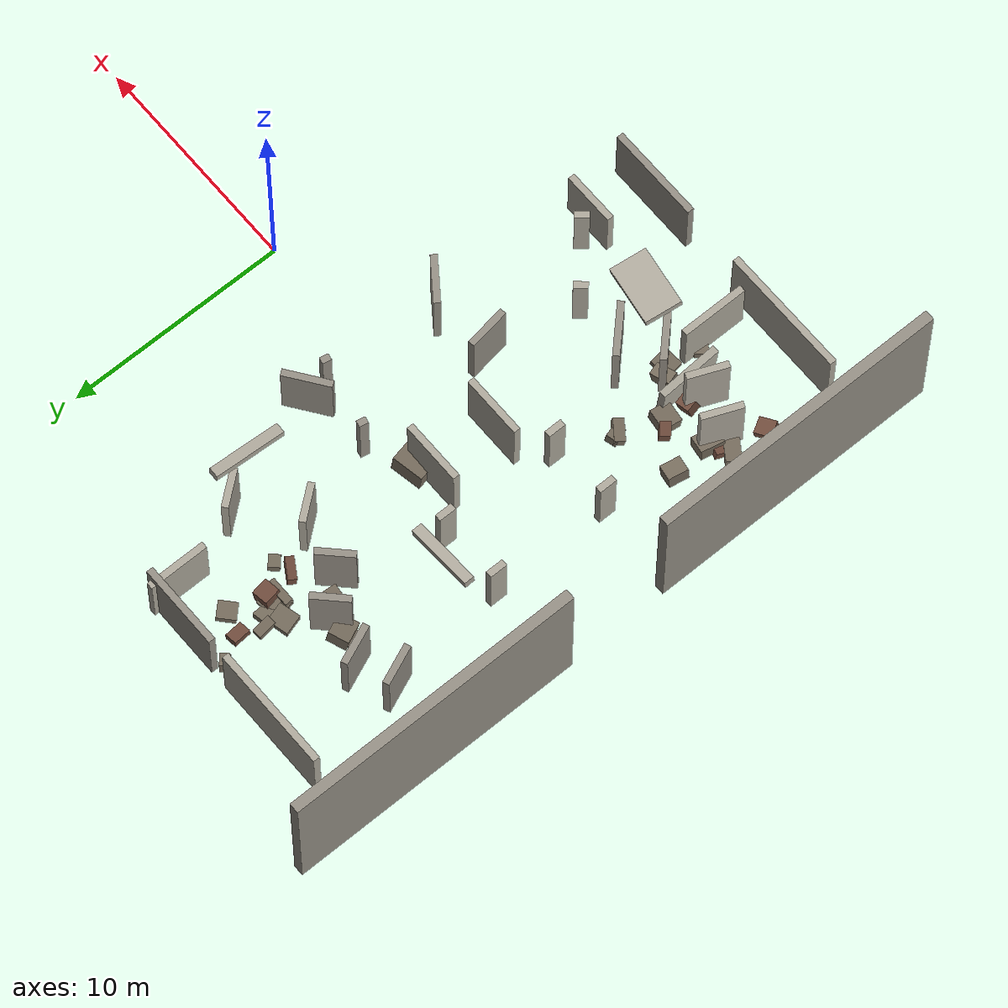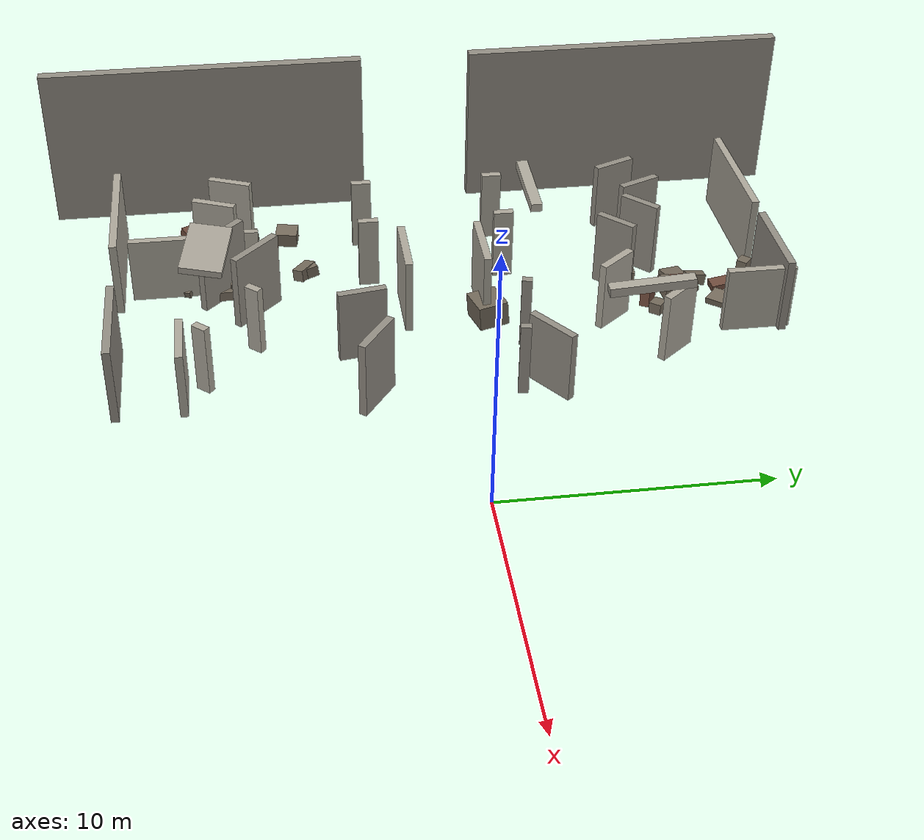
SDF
<sdf version="1.6">
 <model name="ruins_urban_01_challenge">
  <static>true</static>
  <link name="003_main_envelope_west_n">
   <pose>-20.80000 9.00000 3.40000 0.00000 0.00000 -1.57080</pose>
   <visual name="visual">
    <geometry><box><size>13.40000 0.46000 6.80000</size></box></geometry>
    <material>
     <ambient>0.580 0.560 0.520 1</ambient>
     <diffuse>0.580 0.560 0.520 1</diffuse>
     <specular>0.03 0.03 0.03 1</specular>
    </material>
   </visual>
   <collision name="collision">
    <geometry><box><size>13.40000 0.46000 6.80000</size></box></geometry>
    <surface>
     <contact><collide_bitmask>0x01</collide_bitmask></contact>
     <friction><ode><mu>1.0</mu><mu2>1.0</mu2></ode></friction>
    </surface>
   </collision>
  </link>
  <link name="004_main_envelope_west_s">
   <pose>-20.80000 -9.00000 3.40000 0.00000 0.00000 -1.57080</pose>
   <visual name="visual">
    <geometry><box><size>13.40000 0.46000 6.80000</size></box></geometry>
    <material>
     <ambient>0.580 0.560 0.520 1</ambient>
     <diffuse>0.580 0.560 0.520 1</diffuse>
     <specular>0.03 0.03 0.03 1</specular>
    </material>
   </visual>
   <collision name="collision">
    <geometry><box><size>13.40000 0.46000 6.80000</size></box></geometry>
    <surface>
     <contact><collide_bitmask>0x01</collide_bitmask></contact>
     <friction><ode><mu>1.0</mu><mu2>1.0</mu2></ode></friction>
    </surface>
   </collision>
  </link>
  <link name="006_main_corridor_west_lobby_west_n1_left">
   <pose>-17.02500 2.75000 1.48500 0.00000 0.00000 1.57080</pose>
   <visual name="visual">
    <geometry><box><size>0.80000 0.30000 2.97000</size></box></geometry>
    <material>
     <ambient>0.680 0.660 0.610 1</ambient>
     <diffuse>0.680 0.660 0.610 1</diffuse>
     <specular>0.03 0.03 0.03 1</specular>
    </material>
   </visual>
   <collision name="collision">
    <geometry><box><size>0.80000 0.30000 2.97000</size></box></geometry>
    <surface>
     <contact><collide_bitmask>0x01</collide_bitmask></contact>
     <friction><ode><mu>1.0</mu><mu2>1.0</mu2></ode></friction>
    </surface>
   </collision>
  </link>
  <link name="007_main_corridor_west_lobby_west_n1_right">
   <pose>-13.97500 2.75000 1.48500 0.00000 0.00000 1.57080</pose>
   <visual name="visual">
    <geometry><box><size>0.80000 0.30000 2.97000</size></box></geometry>
    <material>
     <ambient>0.680 0.660 0.610 1</ambient>
     <diffuse>0.680 0.660 0.610 1</diffuse>
     <specular>0.03 0.03 0.03 1</specular>
    </material>
   </visual>
   <collision name="collision">
    <geometry><box><size>0.80000 0.30000 2.97000</size></box></geometry>
    <surface>
     <contact><collide_bitmask>0x01</collide_bitmask></contact>
     <friction><ode><mu>1.0</mu><mu2>1.0</mu2></ode></friction>
    </surface>
   </collision>
  </link>
  <link name="008_main_corridor_west_n1_west_n2_left">
   <pose>-13.90407 8.40407 1.54500 0.00000 0.00000 0.78540</pose>
   <visual name="visual">
    <geometry><box><size>1.66396 0.30000 3.09000</size></box></geometry>
    <material>
     <ambient>0.580 0.560 0.520 1</ambient>
     <diffuse>0.580 0.560 0.520 1</diffuse>
     <specular>0.03 0.03 0.03 1</specular>
    </material>
   </visual>
   <collision name="collision">
    <geometry><box><size>1.66396 0.30000 3.09000</size></box></geometry>
    <surface>
     <contact><collide_bitmask>0x01</collide_bitmask></contact>
     <friction><ode><mu>1.0</mu><mu2>1.0</mu2></ode></friction>
    </surface>
   </collision>
  </link>
  <link name="009_main_corridor_west_n1_west_n2_right">
   <pose>-12.59593 7.09593 1.54500 0.00000 0.00000 0.78540</pose>
   <visual name="visual">
    <geometry><box><size>1.66396 0.30000 3.09000</size></box></geometry>
    <material>
     <ambient>0.580 0.560 0.520 1</ambient>
     <diffuse>0.580 0.560 0.520 1</diffuse>
     <specular>0.03 0.03 0.03 1</specular>
    </material>
   </visual>
   <collision name="collision">
    <geometry><box><size>1.66396 0.30000 3.09000</size></box></geometry>
    <surface>
     <contact><collide_bitmask>0x01</collide_bitmask></contact>
     <friction><ode><mu>1.0</mu><mu2>1.0</mu2></ode></friction>
    </surface>
   </collision>
  </link>
  <link name="010_main_corridor_west_n2_core_n_left">
   <pose>-7.80918 8.45266 1.42500 0.00000 0.00000 -0.89606</pose>
   <visual name="visual">
    <geometry><box><size>1.70312 0.30000 2.85000</size></box></geometry>
    <material>
     <ambient>0.680 0.660 0.610 1</ambient>
     <diffuse>0.680 0.660 0.610 1</diffuse>
     <specular>0.03 0.03 0.03 1</specular>
    </material>
   </visual>
   <collision name="collision">
    <geometry><box><size>1.70312 0.30000 2.85000</size></box></geometry>
    <surface>
     <contact><collide_bitmask>0x01</collide_bitmask></contact>
     <friction><ode><mu>1.0</mu><mu2>1.0</mu2></ode></friction>
    </surface>
   </collision>
  </link>
  <link name="011_main_corridor_west_n2_core_n_right">
   <pose>-10.19082 6.54734 1.42500 0.00000 0.00000 -0.89606</pose>
   <visual name="visual">
    <geometry><box><size>1.70312 0.30000 2.85000</size></box></geometry>
    <material>
     <ambient>0.680 0.660 0.610 1</ambient>
     <diffuse>0.680 0.660 0.610 1</diffuse>
     <specular>0.03 0.03 0.03 1</specular>
    </material>
   </visual>
   <collision name="collision">
    <geometry><box><size>1.70312 0.30000 2.85000</size></box></geometry>
    <surface>
     <contact><collide_bitmask>0x01</collide_bitmask></contact>
     <friction><ode><mu>1.0</mu><mu2>1.0</mu2></ode></friction>
    </surface>
   </collision>
  </link>
  <link name="012_main_corridor_core_n_core_w_left">
   <pose>-6.00461 2.20092 1.48500 0.00000 0.00000 -1.76819</pose>
   <visual name="visual">
    <geometry><box><size>0.39902 0.30000 2.97000</size></box></geometry>
    <material>
     <ambient>0.580 0.560 0.520 1</ambient>
     <diffuse>0.580 0.560 0.520 1</diffuse>
     <specular>0.03 0.03 0.03 1</specular>
    </material>
   </visual>
   <collision name="collision">
    <geometry><box><size>0.39902 0.30000 2.97000</size></box></geometry>
    <surface>
     <contact><collide_bitmask>0x01</collide_bitmask></contact>
     <friction><ode><mu>1.0</mu><mu2>1.0</mu2></ode></friction>
    </surface>
   </collision>
  </link>
  <link name="013_main_corridor_core_n_core_w_right">
   <pose>-8.99539 2.79908 1.48500 0.00000 0.00000 -1.76819</pose>
   <visual name="visual">
    <geometry><box><size>0.39902 0.30000 2.97000</size></box></geometry>
    <material>
     <ambient>0.580 0.560 0.520 1</ambient>
     <diffuse>0.580 0.560 0.520 1</diffuse>
     <specular>0.03 0.03 0.03 1</specular>
    </material>
   </visual>
   <collision name="collision">
    <geometry><box><size>0.39902 0.30000 2.97000</size></box></geometry>
    <surface>
     <contact><collide_bitmask>0x01</collide_bitmask></contact>
     <friction><ode><mu>1.0</mu><mu2>1.0</mu2></ode></friction>
    </surface>
   </collision>
  </link>
  <link name="014_main_corridor_core_w_west_lobby_left">
   <pose>-11.75000 -1.52500 1.54500 0.00000 0.00000 3.14159</pose>
   <visual name="visual">
    <geometry><box><size>2.80000 0.30000 3.09000</size></box></geometry>
    <material>
     <ambient>0.680 0.660 0.610 1</ambient>
     <diffuse>0.680 0.660 0.610 1</diffuse>
     <specular>0.03 0.03 0.03 1</specular>
    </material>
   </visual>
   <collision name="collision">
    <geometry><box><size>2.80000 0.30000 3.09000</size></box></geometry>
    <surface>
     <contact><collide_bitmask>0x01</collide_bitmask></contact>
     <friction><ode><mu>1.0</mu><mu2>1.0</mu2></ode></friction>
    </surface>
   </collision>
  </link>
  <link name="015_main_corridor_core_w_west_lobby_right">
   <pose>-11.75000 1.52500 1.54500 0.00000 0.00000 3.14159</pose>
   <visual name="visual">
    <geometry><box><size>2.80000 0.30000 3.09000</size></box></geometry>
    <material>
     <ambient>0.680 0.660 0.610 1</ambient>
     <diffuse>0.680 0.660 0.610 1</diffuse>
     <specular>0.03 0.03 0.03 1</specular>
    </material>
   </visual>
   <collision name="collision">
    <geometry><box><size>2.80000 0.30000 3.09000</size></box></geometry>
    <surface>
     <contact><collide_bitmask>0x01</collide_bitmask></contact>
     <friction><ode><mu>1.0</mu><mu2>1.0</mu2></ode></friction>
    </surface>
   </collision>
  </link>
  <link name="016_main_corridor_west_n1_west_n_dead_left">
   <pose>-17.58077 8.15385 1.42500 0.00000 0.00000 1.96559</pose>
   <visual name="visual">
    <geometry><box><size>1.80000 0.30000 2.85000</size></box></geometry>
    <material>
     <ambient>0.580 0.560 0.520 1</ambient>
     <diffuse>0.580 0.560 0.520 1</diffuse>
     <specular>0.03 0.03 0.03 1</specular>
    </material>
   </visual>
   <collision name="collision">
    <geometry><box><size>1.80000 0.30000 2.85000</size></box></geometry>
    <surface>
     <contact><collide_bitmask>0x01</collide_bitmask></contact>
     <friction><ode><mu>1.0</mu><mu2>1.0</mu2></ode></friction>
    </surface>
   </collision>
  </link>
  <link name="017_main_corridor_west_n1_west_n_dead_right">
   <pose>-15.91923 8.84615 1.42500 0.00000 0.00000 1.96559</pose>
   <visual name="visual">
    <geometry><box><size>1.80000 0.30000 2.85000</size></box></geometry>
    <material>
     <ambient>0.580 0.560 0.520 1</ambient>
     <diffuse>0.580 0.560 0.520 1</diffuse>
     <specular>0.03 0.03 0.03 1</specular>
    </material>
   </visual>
   <collision name="collision">
    <geometry><box><size>1.80000 0.30000 2.85000</size></box></geometry>
    <surface>
     <contact><collide_bitmask>0x01</collide_bitmask></contact>
     <friction><ode><mu>1.0</mu><mu2>1.0</mu2></ode></friction>
    </surface>
   </collision>
  </link>
  <link name="018_main_corridor_west_lobby_west_s1_left">
   <pose>-13.97500 -2.75000 1.48500 0.00000 0.00000 -1.57080</pose>
   <visual name="visual">
    <geometry><box><size>0.80000 0.30000 2.97000</size></box></geometry>
    <material>
     <ambient>0.680 0.660 0.610 1</ambient>
     <diffuse>0.680 0.660 0.610 1</diffuse>
     <specular>0.03 0.03 0.03 1</specular>
    </material>
   </visual>
   <collision name="collision">
    <geometry><box><size>0.80000 0.30000 2.97000</size></box></geometry>
    <surface>
     <contact><collide_bitmask>0x01</collide_bitmask></contact>
     <friction><ode><mu>1.0</mu><mu2>1.0</mu2></ode></friction>
    </surface>
   </collision>
  </link>
  <link name="019_main_corridor_west_lobby_west_s1_right">
   <pose>-17.02500 -2.75000 1.48500 0.00000 0.00000 -1.57080</pose>
   <visual name="visual">
    <geometry><box><size>0.80000 0.30000 2.97000</size></box></geometry>
    <material>
     <ambient>0.680 0.660 0.610 1</ambient>
     <diffuse>0.680 0.660 0.610 1</diffuse>
     <specular>0.03 0.03 0.03 1</specular>
    </material>
   </visual>
   <collision name="collision">
    <geometry><box><size>0.80000 0.30000 2.97000</size></box></geometry>
    <surface>
     <contact><collide_bitmask>0x01</collide_bitmask></contact>
     <friction><ode><mu>1.0</mu><mu2>1.0</mu2></ode></friction>
    </surface>
   </collision>
  </link>
  <link name="020_main_corridor_west_s1_west_s2_left">
   <pose>-12.34593 -7.34593 1.54500 0.00000 0.00000 -0.78540</pose>
   <visual name="visual">
    <geometry><box><size>2.37107 0.30000 3.09000</size></box></geometry>
    <material>
     <ambient>0.580 0.560 0.520 1</ambient>
     <diffuse>0.580 0.560 0.520 1</diffuse>
     <specular>0.03 0.03 0.03 1</specular>
    </material>
   </visual>
   <collision name="collision">
    <geometry><box><size>2.37107 0.30000 3.09000</size></box></geometry>
    <surface>
     <contact><collide_bitmask>0x01</collide_bitmask></contact>
     <friction><ode><mu>1.0</mu><mu2>1.0</mu2></ode></friction>
    </surface>
   </collision>
  </link>
  <link name="021_main_corridor_west_s1_west_s2_right">
   <pose>-13.65407 -8.65407 1.54500 0.00000 0.00000 -0.78540</pose>
   <visual name="visual">
    <geometry><box><size>2.37107 0.30000 3.09000</size></box></geometry>
    <material>
     <ambient>0.580 0.560 0.520 1</ambient>
     <diffuse>0.580 0.560 0.520 1</diffuse>
     <specular>0.03 0.03 0.03 1</specular>
    </material>
   </visual>
   <collision name="collision">
    <geometry><box><size>2.37107 0.30000 3.09000</size></box></geometry>
    <surface>
     <contact><collide_bitmask>0x01</collide_bitmask></contact>
     <friction><ode><mu>1.0</mu><mu2>1.0</mu2></ode></friction>
    </surface>
   </collision>
  </link>
  <link name="022_main_corridor_west_s2_core_s_left">
   <pose>-9.89768 -7.49578 1.42500 0.00000 0.00000 0.85197</pose>
   <visual name="visual">
    <geometry><box><size>0.61507 0.30000 2.85000</size></box></geometry>
    <material>
     <ambient>0.680 0.660 0.610 1</ambient>
     <diffuse>0.680 0.660 0.610 1</diffuse>
     <specular>0.03 0.03 0.03 1</specular>
    </material>
   </visual>
   <collision name="collision">
    <geometry><box><size>0.61507 0.30000 2.85000</size></box></geometry>
    <surface>
     <contact><collide_bitmask>0x01</collide_bitmask></contact>
     <friction><ode><mu>1.0</mu><mu2>1.0</mu2></ode></friction>
    </surface>
   </collision>
  </link>
  <link name="023_main_corridor_west_s2_core_s_right">
   <pose>-7.60232 -9.50422 1.42500 0.00000 0.00000 0.85197</pose>
   <visual name="visual">
    <geometry><box><size>0.61507 0.30000 2.85000</size></box></geometry>
    <material>
     <ambient>0.680 0.660 0.610 1</ambient>
     <diffuse>0.680 0.660 0.610 1</diffuse>
     <specular>0.03 0.03 0.03 1</specular>
    </material>
   </visual>
   <collision name="collision">
    <geometry><box><size>0.61507 0.30000 2.85000</size></box></geometry>
    <surface>
     <contact><collide_bitmask>0x01</collide_bitmask></contact>
     <friction><ode><mu>1.0</mu><mu2>1.0</mu2></ode></friction>
    </surface>
   </collision>
  </link>
  <link name="024_main_corridor_core_s_core_w_left">
   <pose>-9.00727 -3.48189 1.48500 0.00000 0.00000 1.72345</pose>
   <visual name="visual">
    <geometry><box><size>1.87647 0.30000 2.97000</size></box></geometry>
    <material>
     <ambient>0.580 0.560 0.520 1</ambient>
     <diffuse>0.580 0.560 0.520 1</diffuse>
     <specular>0.03 0.03 0.03 1</specular>
    </material>
   </visual>
   <collision name="collision">
    <geometry><box><size>1.87647 0.30000 2.97000</size></box></geometry>
    <surface>
     <contact><collide_bitmask>0x01</collide_bitmask></contact>
     <friction><ode><mu>1.0</mu><mu2>1.0</mu2></ode></friction>
    </surface>
   </collision>
  </link>
  <link name="026_main_corridor_west_s1_west_s_dead_left">
   <pose>-15.91923 -8.84615 1.54500 0.00000 0.00000 -1.96559</pose>
   <visual name="visual">
    <geometry><box><size>1.80000 0.30000 3.09000</size></box></geometry>
    <material>
     <ambient>0.680 0.660 0.610 1</ambient>
     <diffuse>0.680 0.660 0.610 1</diffuse>
     <specular>0.03 0.03 0.03 1</specular>
    </material>
   </visual>
   <collision name="collision">
    <geometry><box><size>1.80000 0.30000 3.09000</size></box></geometry>
    <surface>
     <contact><collide_bitmask>0x01</collide_bitmask></contact>
     <friction><ode><mu>1.0</mu><mu2>1.0</mu2></ode></friction>
    </surface>
   </collision>
  </link>
  <link name="027_main_corridor_west_s1_west_s_dead_right">
   <pose>-17.58077 -8.15385 1.54500 0.00000 0.00000 -1.96559</pose>
   <visual name="visual">
    <geometry><box><size>1.80000 0.30000 3.09000</size></box></geometry>
    <material>
     <ambient>0.680 0.660 0.610 1</ambient>
     <diffuse>0.680 0.660 0.610 1</diffuse>
     <specular>0.03 0.03 0.03 1</specular>
    </material>
   </visual>
   <collision name="collision">
    <geometry><box><size>1.80000 0.30000 3.09000</size></box></geometry>
    <surface>
     <contact><collide_bitmask>0x01</collide_bitmask></contact>
     <friction><ode><mu>1.0</mu><mu2>1.0</mu2></ode></friction>
    </surface>
   </collision>
  </link>
  <link name="028_main_corridor_core_w_atrium_n_left">
   <pose>-6.14696 3.23332 1.42500 0.00000 0.00000 0.62880</pose>
   <visual name="visual">
    <geometry><box><size>2.10074 0.30000 2.85000</size></box></geometry>
    <material>
     <ambient>0.580 0.560 0.520 1</ambient>
     <diffuse>0.580 0.560 0.520 1</diffuse>
     <specular>0.03 0.03 0.03 1</specular>
    </material>
   </visual>
   <collision name="collision">
    <geometry><box><size>2.10074 0.30000 2.85000</size></box></geometry>
    <surface>
     <contact><collide_bitmask>0x01</collide_bitmask></contact>
     <friction><ode><mu>1.0</mu><mu2>1.0</mu2></ode></friction>
    </surface>
   </collision>
  </link>
  <link name="033_main_corridor_core_w_atrium_s_right">
   <pose>-6.14696 -3.23332 1.54500 0.00000 0.00000 -0.62880</pose>
   <visual name="visual">
    <geometry><box><size>2.10074 0.30000 3.09000</size></box></geometry>
    <material>
     <ambient>0.580 0.560 0.520 1</ambient>
     <diffuse>0.580 0.560 0.520 1</diffuse>
     <specular>0.03 0.03 0.03 1</specular>
    </material>
   </visual>
   <collision name="collision">
    <geometry><box><size>2.10074 0.30000 3.09000</size></box></geometry>
    <surface>
     <contact><collide_bitmask>0x01</collide_bitmask></contact>
     <friction><ode><mu>1.0</mu><mu2>1.0</mu2></ode></friction>
    </surface>
   </collision>
  </link>
  <link name="058_main_shell_northwest_a">
   <pose>-15.95000 13.00000 1.55000 0.00000 0.00000 0.00000</pose>
   <visual name="visual">
    <geometry><box><size>5.50000 0.30000 3.10000</size></box></geometry>
    <material>
     <ambient>0.680 0.660 0.610 1</ambient>
     <diffuse>0.680 0.660 0.610 1</diffuse>
     <specular>0.03 0.03 0.03 1</specular>
    </material>
   </visual>
   <collision name="collision">
    <geometry><box><size>5.50000 0.30000 3.10000</size></box></geometry>
    <surface>
     <contact><collide_bitmask>0x01</collide_bitmask></contact>
     <friction><ode><mu>1.0</mu><mu2>1.0</mu2></ode></friction>
    </surface>
   </collision>
  </link>
  <link name="059_main_shell_northwest_b">
   <pose>-10.50000 13.00000 1.55000 0.00000 0.00000 0.00000</pose>
   <visual name="visual">
    <geometry><box><size>3.80000 0.30000 3.10000</size></box></geometry>
    <material>
     <ambient>0.580 0.560 0.520 1</ambient>
     <diffuse>0.580 0.560 0.520 1</diffuse>
     <specular>0.03 0.03 0.03 1</specular>
    </material>
   </visual>
   <collision name="collision">
    <geometry><box><size>3.80000 0.30000 3.10000</size></box></geometry>
    <surface>
     <contact><collide_bitmask>0x01</collide_bitmask></contact>
     <friction><ode><mu>1.0</mu><mu2>1.0</mu2></ode></friction>
    </surface>
   </collision>
  </link>
  <link name="063_main_shell_southwest_a">
   <pose>-15.90000 -12.80000 1.55000 0.00000 0.00000 0.00000</pose>
   <visual name="visual">
    <geometry><box><size>5.80000 0.30000 3.10000</size></box></geometry>
    <material>
     <ambient>0.680 0.660 0.610 1</ambient>
     <diffuse>0.680 0.660 0.610 1</diffuse>
     <specular>0.03 0.03 0.03 1</specular>
    </material>
   </visual>
   <collision name="collision">
    <geometry><box><size>5.80000 0.30000 3.10000</size></box></geometry>
    <surface>
     <contact><collide_bitmask>0x01</collide_bitmask></contact>
     <friction><ode><mu>1.0</mu><mu2>1.0</mu2></ode></friction>
    </surface>
   </collision>
  </link>
  <link name="064_main_shell_southwest_b">
   <pose>-8.15000 -12.80000 1.55000 0.00000 0.00000 0.00000</pose>
   <visual name="visual">
    <geometry><box><size>4.30000 0.30000 3.10000</size></box></geometry>
    <material>
     <ambient>0.580 0.560 0.520 1</ambient>
     <diffuse>0.580 0.560 0.520 1</diffuse>
     <specular>0.03 0.03 0.03 1</specular>
    </material>
   </visual>
   <collision name="collision">
    <geometry><box><size>4.30000 0.30000 3.10000</size></box></geometry>
    <surface>
     <contact><collide_bitmask>0x01</collide_bitmask></contact>
     <friction><ode><mu>1.0</mu><mu2>1.0</mu2></ode></friction>
    </surface>
   </collision>
  </link>
  <link name="073_main_structure_lintel_west">
   <pose>-15.40000 4.05000 3.25000 0.00000 0.10000 0.02000</pose>
   <visual name="visual">
    <geometry><box><size>3.10000 0.46000 0.36000</size></box></geometry>
    <material>
     <ambient>0.680 0.660 0.610 1</ambient>
     <diffuse>0.680 0.660 0.610 1</diffuse>
     <specular>0.03 0.03 0.03 1</specular>
    </material>
   </visual>
   <collision name="collision">
    <geometry><box><size>3.10000 0.46000 0.36000</size></box></geometry>
    <surface>
     <contact><collide_bitmask>0x01</collide_bitmask></contact>
     <friction><ode><mu>1.0</mu><mu2>1.0</mu2></ode></friction>
    </surface>
   </collision>
  </link>
  <link name="074_main_structure_lintel_north">
   <pose>-7.30000 7.15000 3.45000 0.08000 0.00000 -0.03000</pose>
   <visual name="visual">
    <geometry><box><size>0.46000 3.25000 0.36000</size></box></geometry>
    <material>
     <ambient>0.680 0.660 0.610 1</ambient>
     <diffuse>0.680 0.660 0.610 1</diffuse>
     <specular>0.03 0.03 0.03 1</specular>
    </material>
   </visual>
   <collision name="collision">
    <geometry><box><size>0.46000 3.25000 0.36000</size></box></geometry>
    <surface>
     <contact><collide_bitmask>0x01</collide_bitmask></contact>
     <friction><ode><mu>1.0</mu><mu2>1.0</mu2></ode></friction>
    </surface>
   </collision>
  </link>
  <link name="078_main_structure_ceiling_fragment_south">
   <pose>-11.80000 -9.20000 3.45000 -0.12000 0.10000 -0.18000</pose>
   <visual name="visual">
    <geometry><box><size>2.80000 1.65000 0.28000</size></box></geometry>
    <material>
     <ambient>0.680 0.660 0.610 1</ambient>
     <diffuse>0.680 0.660 0.610 1</diffuse>
     <specular>0.03 0.03 0.03 1</specular>
    </material>
   </visual>
   <collision name="collision">
    <geometry><box><size>2.80000 1.65000 0.28000</size></box></geometry>
    <surface>
     <contact><collide_bitmask>0x01</collide_bitmask></contact>
     <friction><ode><mu>1.0</mu><mu2>1.0</mu2></ode></friction>
    </surface>
   </collision>
  </link>
  <link name="079_main_collapse_0_00">
   <pose>-15.96051 -6.70316 0.38147 -0.13027 -0.05024 0.87009</pose>
   <visual name="visual">
    <geometry><box><size>0.45375 0.60434 0.76293</size></box></geometry>
    <material>
     <ambient>0.430 0.290 0.230 1</ambient>
     <diffuse>0.430 0.290 0.230 1</diffuse>
     <specular>0.03 0.03 0.03 1</specular>
    </material>
   </visual>
   <collision name="collision">
    <geometry><box><size>0.45375 0.60434 0.76293</size></box></geometry>
    <surface>
     <contact><collide_bitmask>0x01</collide_bitmask></contact>
     <friction><ode><mu>1.0</mu><mu2>1.0</mu2></ode></friction>
    </surface>
   </collision>
  </link>
  <link name="080_main_collapse_0_01">
   <pose>-15.09990 -9.31319 0.36469 -0.04235 -0.02718 1.63596</pose>
   <visual name="visual">
    <geometry><box><size>0.59109 0.98702 0.72939</size></box></geometry>
    <material>
     <ambient>0.460 0.420 0.360 1</ambient>
     <diffuse>0.460 0.420 0.360 1</diffuse>
     <specular>0.03 0.03 0.03 1</specular>
    </material>
   </visual>
   <collision name="collision">
    <geometry><box><size>0.59109 0.98702 0.72939</size></box></geometry>
    <surface>
     <contact><collide_bitmask>0x01</collide_bitmask></contact>
     <friction><ode><mu>1.0</mu><mu2>1.0</mu2></ode></friction>
    </surface>
   </collision>
  </link>
  <link name="081_main_collapse_0_02">
   <pose>-14.12396 -10.15121 0.13221 0.17755 -0.09806 1.00335</pose>
   <visual name="visual">
    <geometry><box><size>0.62166 0.59159 0.26443</size></box></geometry>
    <material>
     <ambient>0.460 0.420 0.360 1</ambient>
     <diffuse>0.460 0.420 0.360 1</diffuse>
     <specular>0.03 0.03 0.03 1</specular>
    </material>
   </visual>
   <collision name="collision">
    <geometry><box><size>0.62166 0.59159 0.26443</size></box></geometry>
    <surface>
     <contact><collide_bitmask>0x01</collide_bitmask></contact>
     <friction><ode><mu>1.0</mu><mu2>1.0</mu2></ode></friction>
    </surface>
   </collision>
  </link>
  <link name="082_main_collapse_0_03">
   <pose>-13.71811 -8.69543 0.18380 -0.04381 -0.13788 0.11518</pose>
   <visual name="visual">
    <geometry><box><size>0.91475 0.84332 0.36760</size></box></geometry>
    <material>
     <ambient>0.460 0.420 0.360 1</ambient>
     <diffuse>0.460 0.420 0.360 1</diffuse>
     <specular>0.03 0.03 0.03 1</specular>
    </material>
   </visual>
   <collision name="collision">
    <geometry><box><size>0.91475 0.84332 0.36760</size></box></geometry>
    <surface>
     <contact><collide_bitmask>0x01</collide_bitmask></contact>
     <friction><ode><mu>1.0</mu><mu2>1.0</mu2></ode></friction>
    </surface>
   </collision>
  </link>
  <link name="083_main_collapse_0_04">
   <pose>-18.35810 -9.88697 0.17915 0.18092 0.04412 2.08854</pose>
   <visual name="visual">
    <geometry><box><size>0.73259 0.75820 0.35831</size></box></geometry>
    <material>
     <ambient>0.430 0.290 0.230 1</ambient>
     <diffuse>0.430 0.290 0.230 1</diffuse>
     <specular>0.03 0.03 0.03 1</specular>
    </material>
   </visual>
   <collision name="collision">
    <geometry><box><size>0.73259 0.75820 0.35831</size></box></geometry>
    <surface>
     <contact><collide_bitmask>0x01</collide_bitmask></contact>
     <friction><ode><mu>1.0</mu><mu2>1.0</mu2></ode></friction>
    </surface>
   </collision>
  </link>
  <link name="084_main_collapse_0_05">
   <pose>-15.54230 -7.09289 0.32955 -0.05523 -0.05542 1.46182</pose>
   <visual name="visual">
    <geometry><box><size>0.88136 0.97863 0.65910</size></box></geometry>
    <material>
     <ambient>0.460 0.420 0.360 1</ambient>
     <diffuse>0.460 0.420 0.360 1</diffuse>
     <specular>0.03 0.03 0.03 1</specular>
    </material>
   </visual>
   <collision name="collision">
    <geometry><box><size>0.88136 0.97863 0.65910</size></box></geometry>
    <surface>
     <contact><collide_bitmask>0x01</collide_bitmask></contact>
     <friction><ode><mu>1.0</mu><mu2>1.0</mu2></ode></friction>
    </surface>
   </collision>
  </link>
  <link name="085_main_collapse_0_06">
   <pose>-14.77192 -5.34553 0.24448 -0.13478 0.05948 2.50759</pose>
   <visual name="visual">
    <geometry><box><size>0.98665 0.46563 0.48897</size></box></geometry>
    <material>
     <ambient>0.460 0.420 0.360 1</ambient>
     <diffuse>0.460 0.420 0.360 1</diffuse>
     <specular>0.03 0.03 0.03 1</specular>
    </material>
   </visual>
   <collision name="collision">
    <geometry><box><size>0.98665 0.46563 0.48897</size></box></geometry>
    <surface>
     <contact><collide_bitmask>0x01</collide_bitmask></contact>
     <friction><ode><mu>1.0</mu><mu2>1.0</mu2></ode></friction>
    </surface>
   </collision>
  </link>
  <link name="086_main_collapse_0_07">
   <pose>-17.50478 -5.89979 0.31522 0.02345 -0.14408 2.95459</pose>
   <visual name="visual">
    <geometry><box><size>0.71757 0.89767 0.63044</size></box></geometry>
    <material>
     <ambient>0.460 0.420 0.360 1</ambient>
     <diffuse>0.460 0.420 0.360 1</diffuse>
     <specular>0.03 0.03 0.03 1</specular>
    </material>
   </visual>
   <collision name="collision">
    <geometry><box><size>0.71757 0.89767 0.63044</size></box></geometry>
    <surface>
     <contact><collide_bitmask>0x01</collide_bitmask></contact>
     <friction><ode><mu>1.0</mu><mu2>1.0</mu2></ode></friction>
    </surface>
   </collision>
  </link>
  <link name="087_main_collapse_0_08">
   <pose>-15.63710 -8.26423 0.31258 0.19605 0.18209 1.75614</pose>
   <visual name="visual">
    <geometry><box><size>0.74324 0.65615 0.62516</size></box></geometry>
    <material>
     <ambient>0.430 0.290 0.230 1</ambient>
     <diffuse>0.430 0.290 0.230 1</diffuse>
     <specular>0.03 0.03 0.03 1</specular>
    </material>
   </visual>
   <collision name="collision">
    <geometry><box><size>0.74324 0.65615 0.62516</size></box></geometry>
    <surface>
     <contact><collide_bitmask>0x01</collide_bitmask></contact>
     <friction><ode><mu>1.0</mu><mu2>1.0</mu2></ode></friction>
    </surface>
   </collision>
  </link>
  <link name="088_main_collapse_0_09">
   <pose>-17.40409 -7.71022 0.28115 0.16120 -0.06732 1.38114</pose>
   <visual name="visual">
    <geometry><box><size>1.08199 0.80598 0.56229</size></box></geometry>
    <material>
     <ambient>0.460 0.420 0.360 1</ambient>
     <diffuse>0.460 0.420 0.360 1</diffuse>
     <specular>0.03 0.03 0.03 1</specular>
    </material>
   </visual>
   <collision name="collision">
    <geometry><box><size>1.08199 0.80598 0.56229</size></box></geometry>
    <surface>
     <contact><collide_bitmask>0x01</collide_bitmask></contact>
     <friction><ode><mu>1.0</mu><mu2>1.0</mu2></ode></friction>
    </surface>
   </collision>
  </link>
  <link name="089_main_collapse_0_10">
   <pose>-18.22429 -8.25274 0.20191 -0.03578 0.01058 2.55486</pose>
   <visual name="visual">
    <geometry><box><size>1.07850 0.66712 0.40383</size></box></geometry>
    <material>
     <ambient>0.460 0.420 0.360 1</ambient>
     <diffuse>0.460 0.420 0.360 1</diffuse>
     <specular>0.03 0.03 0.03 1</specular>
    </material>
   </visual>
   <collision name="collision">
    <geometry><box><size>1.07850 0.66712 0.40383</size></box></geometry>
    <surface>
     <contact><collide_bitmask>0x01</collide_bitmask></contact>
     <friction><ode><mu>1.0</mu><mu2>1.0</mu2></ode></friction>
    </surface>
   </collision>
  </link>
  <link name="090_main_collapse_0_11">
   <pose>-14.80075 -5.16702 0.22657 0.13261 -0.10699 0.30310</pose>
   <visual name="visual">
    <geometry><box><size>0.51296 0.68868 0.45314</size></box></geometry>
    <material>
     <ambient>0.460 0.420 0.360 1</ambient>
     <diffuse>0.460 0.420 0.360 1</diffuse>
     <specular>0.03 0.03 0.03 1</specular>
    </material>
   </visual>
   <collision name="collision">
    <geometry><box><size>0.51296 0.68868 0.45314</size></box></geometry>
    <surface>
     <contact><collide_bitmask>0x01</collide_bitmask></contact>
     <friction><ode><mu>1.0</mu><mu2>1.0</mu2></ode></friction>
    </surface>
   </collision>
  </link>
  <link name="091_main_collapse_0_12">
   <pose>-17.90973 -7.90636 0.19162 -0.18300 -0.04201 2.82475</pose>
   <visual name="visual">
    <geometry><box><size>0.49978 0.59223 0.38323</size></box></geometry>
    <material>
     <ambient>0.430 0.290 0.230 1</ambient>
     <diffuse>0.430 0.290 0.230 1</diffuse>
     <specular>0.03 0.03 0.03 1</specular>
    </material>
   </visual>
   <collision name="collision">
    <geometry><box><size>0.49978 0.59223 0.38323</size></box></geometry>
    <surface>
     <contact><collide_bitmask>0x01</collide_bitmask></contact>
     <friction><ode><mu>1.0</mu><mu2>1.0</mu2></ode></friction>
    </surface>
   </collision>
  </link>
  <link name="092_main_collapse_0_13">
   <pose>-14.15770 -8.23762 0.31926 -0.04715 0.18178 0.26676</pose>
   <visual name="visual">
    <geometry><box><size>0.93444 0.56979 0.63852</size></box></geometry>
    <material>
     <ambient>0.460 0.420 0.360 1</ambient>
     <diffuse>0.460 0.420 0.360 1</diffuse>
     <specular>0.03 0.03 0.03 1</specular>
    </material>
   </visual>
   <collision name="collision">
    <geometry><box><size>0.93444 0.56979 0.63852</size></box></geometry>
    <surface>
     <contact><collide_bitmask>0x01</collide_bitmask></contact>
     <friction><ode><mu>1.0</mu><mu2>1.0</mu2></ode></friction>
    </surface>
   </collision>
  </link>
  <link name="093_main_collapse_facade_0_1">
   <pose>-15.07783 -8.60609 1.05800 -0.10623 0.04888 1.60920</pose>
   <visual name="visual">
    <geometry><box><size>2.83915 0.32000 2.11601</size></box></geometry>
    <material>
     <ambient>0.680 0.660 0.610 1</ambient>
     <diffuse>0.680 0.660 0.610 1</diffuse>
     <specular>0.03 0.03 0.03 1</specular>
    </material>
   </visual>
   <collision name="collision">
    <geometry><box><size>2.83915 0.32000 2.11601</size></box></geometry>
    <surface>
     <contact><collide_bitmask>0x01</collide_bitmask></contact>
     <friction><ode><mu>1.0</mu><mu2>1.0</mu2></ode></friction>
    </surface>
   </collision>
  </link>
  <link name="094_main_collapse_1_14">
   <pose>-10.45899 8.47333 0.23074 -0.05261 -0.04494 0.82388</pose>
   <visual name="visual">
    <geometry><box><size>0.49856 0.54834 0.46147</size></box></geometry>
    <material>
     <ambient>0.460 0.420 0.360 1</ambient>
     <diffuse>0.460 0.420 0.360 1</diffuse>
     <specular>0.03 0.03 0.03 1</specular>
    </material>
   </visual>
   <collision name="collision">
    <geometry><box><size>0.49856 0.54834 0.46147</size></box></geometry>
    <surface>
     <contact><collide_bitmask>0x01</collide_bitmask></contact>
     <friction><ode><mu>1.0</mu><mu2>1.0</mu2></ode></friction>
    </surface>
   </collision>
  </link>
  <link name="095_main_collapse_1_15">
   <pose>-11.63122 9.13087 0.31199 -0.11443 -0.09084 0.01905</pose>
   <visual name="visual">
    <geometry><box><size>1.12822 0.36178 0.62399</size></box></geometry>
    <material>
     <ambient>0.460 0.420 0.360 1</ambient>
     <diffuse>0.460 0.420 0.360 1</diffuse>
     <specular>0.03 0.03 0.03 1</specular>
    </material>
   </visual>
   <collision name="collision">
    <geometry><box><size>1.12822 0.36178 0.62399</size></box></geometry>
    <surface>
     <contact><collide_bitmask>0x01</collide_bitmask></contact>
     <friction><ode><mu>1.0</mu><mu2>1.0</mu2></ode></friction>
    </surface>
   </collision>
  </link>
  <link name="096_main_collapse_1_16">
   <pose>-11.17872 8.23993 0.42123 -0.04538 0.16475 2.59353</pose>
   <visual name="visual">
    <geometry><box><size>0.94164 0.37574 0.84245</size></box></geometry>
    <material>
     <ambient>0.430 0.290 0.230 1</ambient>
     <diffuse>0.430 0.290 0.230 1</diffuse>
     <specular>0.03 0.03 0.03 1</specular>
    </material>
   </visual>
   <collision name="collision">
    <geometry><box><size>0.94164 0.37574 0.84245</size></box></geometry>
    <surface>
     <contact><collide_bitmask>0x01</collide_bitmask></contact>
     <friction><ode><mu>1.0</mu><mu2>1.0</mu2></ode></friction>
    </surface>
   </collision>
  </link>
  <link name="097_main_collapse_1_17">
   <pose>-13.13702 7.69907 0.20541 0.13270 0.10219 3.04339</pose>
   <visual name="visual">
    <geometry><box><size>0.92019 0.81312 0.41083</size></box></geometry>
    <material>
     <ambient>0.460 0.420 0.360 1</ambient>
     <diffuse>0.460 0.420 0.360 1</diffuse>
     <specular>0.03 0.03 0.03 1</specular>
    </material>
   </visual>
   <collision name="collision">
    <geometry><box><size>0.92019 0.81312 0.41083</size></box></geometry>
    <surface>
     <contact><collide_bitmask>0x01</collide_bitmask></contact>
     <friction><ode><mu>1.0</mu><mu2>1.0</mu2></ode></friction>
    </surface>
   </collision>
  </link>
  <link name="098_main_collapse_1_18">
   <pose>-12.54595 12.59787 0.39515 -0.02738 0.00364 0.83676</pose>
   <visual name="visual">
    <geometry><box><size>0.42402 0.50992 0.79030</size></box></geometry>
    <material>
     <ambient>0.460 0.420 0.360 1</ambient>
     <diffuse>0.460 0.420 0.360 1</diffuse>
     <specular>0.03 0.03 0.03 1</specular>
    </material>
   </visual>
   <collision name="collision">
    <geometry><box><size>0.42402 0.50992 0.79030</size></box></geometry>
    <surface>
     <contact><collide_bitmask>0x01</collide_bitmask></contact>
     <friction><ode><mu>1.0</mu><mu2>1.0</mu2></ode></friction>
    </surface>
   </collision>
  </link>
  <link name="099_main_collapse_1_19">
   <pose>-12.31485 10.47673 0.21911 -0.12127 0.16876 1.64980</pose>
   <visual name="visual">
    <geometry><box><size>0.82517 0.42646 0.43821</size></box></geometry>
    <material>
     <ambient>0.460 0.420 0.360 1</ambient>
     <diffuse>0.460 0.420 0.360 1</diffuse>
     <specular>0.03 0.03 0.03 1</specular>
    </material>
   </visual>
   <collision name="collision">
    <geometry><box><size>0.82517 0.42646 0.43821</size></box></geometry>
    <surface>
     <contact><collide_bitmask>0x01</collide_bitmask></contact>
     <friction><ode><mu>1.0</mu><mu2>1.0</mu2></ode></friction>
    </surface>
   </collision>
  </link>
  <link name="100_main_collapse_1_20">
   <pose>-11.85707 11.42126 0.14411 0.09673 0.08550 0.11044</pose>
   <visual name="visual">
    <geometry><box><size>0.53539 0.79264 0.28822</size></box></geometry>
    <material>
     <ambient>0.430 0.290 0.230 1</ambient>
     <diffuse>0.430 0.290 0.230 1</diffuse>
     <specular>0.03 0.03 0.03 1</specular>
    </material>
   </visual>
   <collision name="collision">
    <geometry><box><size>0.53539 0.79264 0.28822</size></box></geometry>
    <surface>
     <contact><collide_bitmask>0x01</collide_bitmask></contact>
     <friction><ode><mu>1.0</mu><mu2>1.0</mu2></ode></friction>
    </surface>
   </collision>
  </link>
  <link name="101_main_collapse_1_21">
   <pose>-11.75034 9.51021 0.14354 -0.18424 -0.02864 0.19465</pose>
   <visual name="visual">
    <geometry><box><size>1.11074 0.85629 0.28708</size></box></geometry>
    <material>
     <ambient>0.460 0.420 0.360 1</ambient>
     <diffuse>0.460 0.420 0.360 1</diffuse>
     <specular>0.03 0.03 0.03 1</specular>
    </material>
   </visual>
   <collision name="collision">
    <geometry><box><size>1.11074 0.85629 0.28708</size></box></geometry>
    <surface>
     <contact><collide_bitmask>0x01</collide_bitmask></contact>
     <friction><ode><mu>1.0</mu><mu2>1.0</mu2></ode></friction>
    </surface>
   </collision>
  </link>
  <link name="102_main_collapse_1_22">
   <pose>-11.99334 10.04450 0.13701 0.13494 0.11406 0.16015</pose>
   <visual name="visual">
    <geometry><box><size>0.88902 0.74630 0.27402</size></box></geometry>
    <material>
     <ambient>0.460 0.420 0.360 1</ambient>
     <diffuse>0.460 0.420 0.360 1</diffuse>
     <specular>0.03 0.03 0.03 1</specular>
    </material>
   </visual>
   <collision name="collision">
    <geometry><box><size>0.88902 0.74630 0.27402</size></box></geometry>
    <surface>
     <contact><collide_bitmask>0x01</collide_bitmask></contact>
     <friction><ode><mu>1.0</mu><mu2>1.0</mu2></ode></friction>
    </surface>
   </collision>
  </link>
  <link name="103_main_collapse_1_23">
   <pose>-12.52031 9.68354 0.18547 -0.07199 -0.05761 0.27314</pose>
   <visual name="visual">
    <geometry><box><size>0.95508 0.88852 0.37093</size></box></geometry>
    <material>
     <ambient>0.460 0.420 0.360 1</ambient>
     <diffuse>0.460 0.420 0.360 1</diffuse>
     <specular>0.03 0.03 0.03 1</specular>
    </material>
   </visual>
   <collision name="collision">
    <geometry><box><size>0.95508 0.88852 0.37093</size></box></geometry>
    <surface>
     <contact><collide_bitmask>0x01</collide_bitmask></contact>
     <friction><ode><mu>1.0</mu><mu2>1.0</mu2></ode></friction>
    </surface>
   </collision>
  </link>
  <link name="104_main_collapse_1_24">
   <pose>-11.38362 9.58705 0.42372 0.02621 0.08010 1.71951</pose>
   <visual name="visual">
    <geometry><box><size>0.74611 0.71829 0.84745</size></box></geometry>
    <material>
     <ambient>0.430 0.290 0.230 1</ambient>
     <diffuse>0.430 0.290 0.230 1</diffuse>
     <specular>0.03 0.03 0.03 1</specular>
    </material>
   </visual>
   <collision name="collision">
    <geometry><box><size>0.74611 0.71829 0.84745</size></box></geometry>
    <surface>
     <contact><collide_bitmask>0x01</collide_bitmask></contact>
     <friction><ode><mu>1.0</mu><mu2>1.0</mu2></ode></friction>
    </surface>
   </collision>
  </link>
  <link name="105_main_collapse_1_25">
   <pose>-14.79732 8.12730 0.15674 -0.03444 -0.02672 1.24304</pose>
   <visual name="visual">
    <geometry><box><size>0.57200 0.88393 0.31347</size></box></geometry>
    <material>
     <ambient>0.460 0.420 0.360 1</ambient>
     <diffuse>0.460 0.420 0.360 1</diffuse>
     <specular>0.03 0.03 0.03 1</specular>
    </material>
   </visual>
   <collision name="collision">
    <geometry><box><size>0.57200 0.88393 0.31347</size></box></geometry>
    <surface>
     <contact><collide_bitmask>0x01</collide_bitmask></contact>
     <friction><ode><mu>1.0</mu><mu2>1.0</mu2></ode></friction>
    </surface>
   </collision>
  </link>
  <link name="106_main_collapse_1_26">
   <pose>-10.84916 11.14554 0.13300 -0.08597 -0.10698 2.34840</pose>
   <visual name="visual">
    <geometry><box><size>0.79475 0.82455 0.26601</size></box></geometry>
    <material>
     <ambient>0.460 0.420 0.360 1</ambient>
     <diffuse>0.460 0.420 0.360 1</diffuse>
     <specular>0.03 0.03 0.03 1</specular>
    </material>
   </visual>
   <collision name="collision">
    <geometry><box><size>0.79475 0.82455 0.26601</size></box></geometry>
    <surface>
     <contact><collide_bitmask>0x01</collide_bitmask></contact>
     <friction><ode><mu>1.0</mu><mu2>1.0</mu2></ode></friction>
    </surface>
   </collision>
  </link>
  <link name="107_main_collapse_1_27">
   <pose>-14.43463 8.30001 0.40938 -0.13216 -0.04855 1.98983</pose>
   <visual name="visual">
    <geometry><box><size>0.96950 0.89543 0.81876</size></box></geometry>
    <material>
     <ambient>0.460 0.420 0.360 1</ambient>
     <diffuse>0.460 0.420 0.360 1</diffuse>
     <specular>0.03 0.03 0.03 1</specular>
    </material>
   </visual>
   <collision name="collision">
    <geometry><box><size>0.96950 0.89543 0.81876</size></box></geometry>
    <surface>
     <contact><collide_bitmask>0x01</collide_bitmask></contact>
     <friction><ode><mu>1.0</mu><mu2>1.0</mu2></ode></friction>
    </surface>
   </collision>
  </link>
  <link name="123_main_partition_01">
   <pose>-14.00000 -10.80000 1.35000 0.00000 0.00000 1.57080</pose>
   <visual name="visual">
    <geometry><box><size>3.00000 0.30000 2.70000</size></box></geometry>
    <material>
     <ambient>0.680 0.660 0.610 1</ambient>
     <diffuse>0.680 0.660 0.610 1</diffuse>
     <specular>0.03 0.03 0.03 1</specular>
    </material>
   </visual>
   <collision name="collision">
    <geometry><box><size>3.00000 0.30000 2.70000</size></box></geometry>
    <surface>
     <contact><collide_bitmask>0x01</collide_bitmask></contact>
     <friction><ode><mu>1.0</mu><mu2>1.0</mu2></ode></friction>
    </surface>
   </collision>
  </link>
  <link name="124_main_partition_02">
   <pose>-9.00000 12.00000 1.35000 0.00000 0.00000 1.57080</pose>
   <visual name="visual">
    <geometry><box><size>2.70000 0.30000 2.70000</size></box></geometry>
    <material>
     <ambient>0.680 0.660 0.610 1</ambient>
     <diffuse>0.680 0.660 0.610 1</diffuse>
     <specular>0.03 0.03 0.03 1</specular>
    </material>
   </visual>
   <collision name="collision">
    <geometry><box><size>2.70000 0.30000 2.70000</size></box></geometry>
    <surface>
     <contact><collide_bitmask>0x01</collide_bitmask></contact>
     <friction><ode><mu>1.0</mu><mu2>1.0</mu2></ode></friction>
    </surface>
   </collision>
  </link>
  <link name="127_main_partition_07">
   <pose>-7.20000 -10.30000 1.35000 0.00000 0.00000 0.00000</pose>
   <visual name="visual">
    <geometry><box><size>2.40000 0.30000 2.70000</size></box></geometry>
    <material>
     <ambient>0.680 0.660 0.610 1</ambient>
     <diffuse>0.680 0.660 0.610 1</diffuse>
     <specular>0.03 0.03 0.03 1</specular>
    </material>
   </visual>
   <collision name="collision">
    <geometry><box><size>2.40000 0.30000 2.70000</size></box></geometry>
    <surface>
     <contact><collide_bitmask>0x01</collide_bitmask></contact>
     <friction><ode><mu>1.0</mu><mu2>1.0</mu2></ode></friction>
    </surface>
   </collision>
  </link>
  <link name="128_main_low_block_west">
   <pose>-10.80000 1.65000 0.48000 0.06000 -0.08000 0.22000</pose>
   <visual name="visual">
    <geometry><box><size>1.40000 1.20000 0.96000</size></box></geometry>
    <material>
     <ambient>0.460 0.420 0.360 1</ambient>
     <diffuse>0.460 0.420 0.360 1</diffuse>
     <specular>0.03 0.03 0.03 1</specular>
    </material>
   </visual>
   <collision name="collision">
    <geometry><box><size>1.40000 1.20000 0.96000</size></box></geometry>
    <surface>
     <contact><collide_bitmask>0x01</collide_bitmask></contact>
     <friction><ode><mu>1.0</mu><mu2>1.0</mu2></ode></friction>
    </surface>
   </collision>
  </link>
 </model>
</sdf>
